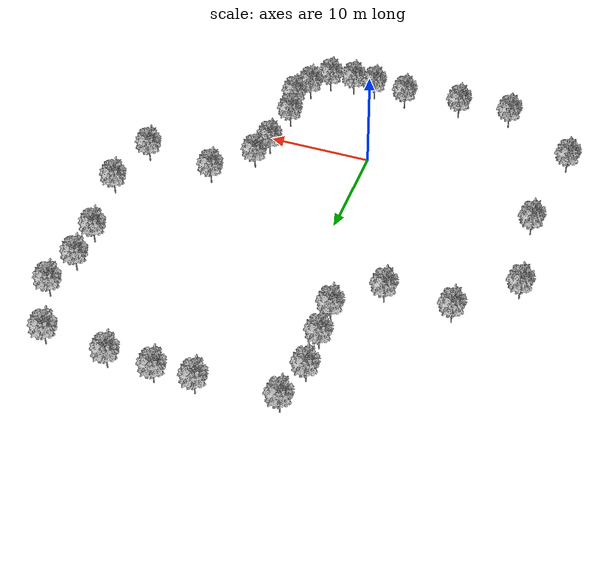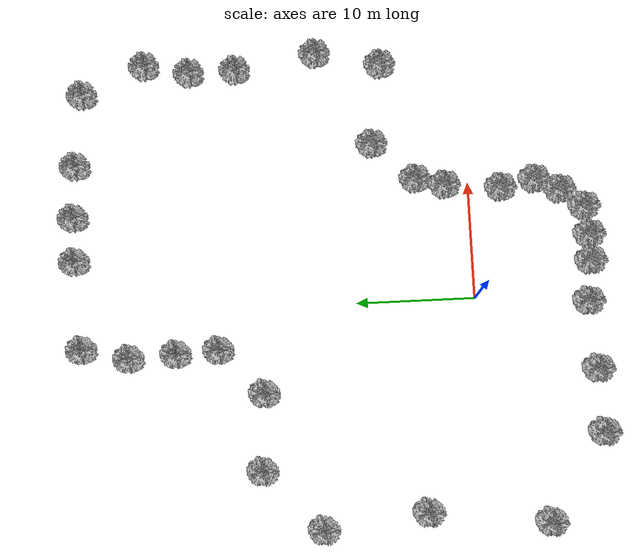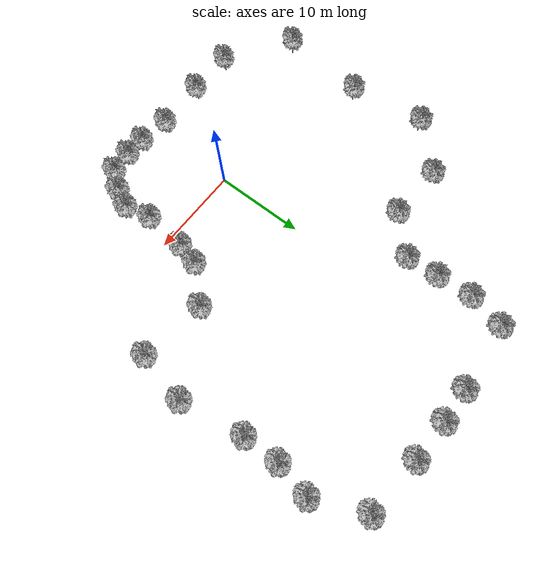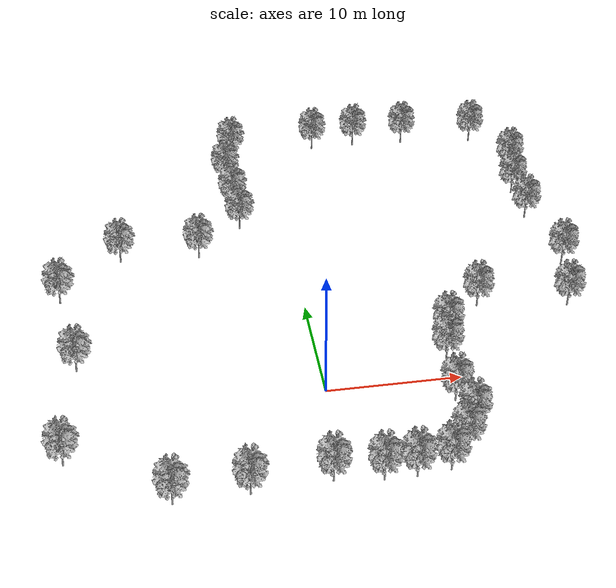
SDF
<sdf version="1.9">
 <world name="forest2">
  <physics type="ode">
   <max_step_size>0.004</max_step_size>
   <real_time_factor>1.0</real_time_factor>
   <real_time_update_rate>250</real_time_update_rate>
  </physics>
  <gravity>0 0 -9.8</gravity>
  <magnetic_field>6e-06 2.3e-05 -4.2e-05</magnetic_field>
  <atmosphere type="adiabatic"/>
  <scene>
   <grid>false</grid>
   <ambient>0.4 0.4 0.4 1</ambient>
   <background>0.7 0.7 0.7 1</background>
   <shadows>true</shadows>
  </scene>
  <include><uri>model://appletree</uri><name>Pine Tree_11</name><pose>10.0031 4.69601 0 0 -0 0</pose></include>
  <include><uri>model://appletree</uri><name>Pine Tree_12</name><pose>9.38057 2.24489 0 0 -0 0</pose></include>
  <include><uri>model://appletree</uri><name>Pine Tree_13</name><pose>8.95187 -2.43736 0 0 -0 0</pose></include>
  <include><uri>model://appletree</uri><name>Pine Tree_14</name><pose>9.54099 -5.29967 0 0 -0 0</pose></include>
  <include><uri>model://appletree</uri><name>Pine Tree_15</name><pose>8.56424 -7.36834 0 0 -0 0</pose></include>
  <include><uri>model://appletree</uri><name>Pine Tree_16</name><pose>7.04987 -9.30259 0 0 -0 0</pose></include>
  <include><uri>model://appletree</uri><name>Pine Tree_17</name><pose>4.64341 -9.56548 0 0 -0 0</pose></include>
  <include><uri>model://appletree</uri><name>Pine Tree_18</name><pose>2.39497 -9.53658 0 0 -0 0</pose></include>
  <include>
   <uri>model://appletree</uri>
   <name>Pine Tree_19</name>
   <pose>-0.978211 -9.12685 0 0 -0 0</pose>
  </include>
  <include>
   <uri>model://appletree</uri>
   <name>Apple Tree_20</name>
   <pose>-6.60386 -9.4906 0 0 -0 0</pose>
  </include>
  <include>
   <uri>model://appletree</uri>
   <name>Pine Tree_21</name>
   <pose>-11.7872 -9.60952 0 0 -0 0</pose>
  </include>
  <include>
   <uri>model://appletree</uri>
   <name>Pine Tree_19_1</name>
   <pose>-17.6272 5.0484 0 0 -0 0</pose>
  </include>
  <include>
   <uri>model://appletree</uri>
   <name>Pine Tree_19_2</name>
   <pose>-18.7952 -4.79736 0 0 -0 0</pose>
  </include>
  <include>
   <uri>model://appletree</uri>
   <name>Pine Tree_19_3</name>
   <pose>-18.6571 13.5589 0 0 -0 0</pose>
  </include>
  <include>
   <uri>model://appletree</uri>
   <name>Pine Tree_19_4</name>
   <pose>-13.7446 18.3234 0 0 -0 0</pose>
  </include>
  <include>
   <uri>model://appletree</uri>
   <name>Pine Tree_19_5</name>
   <pose>20.1207 7.17708 0 0 -0 0</pose>
  </include>
  <include>
   <uri>model://appletree</uri>
   <name>Pine Tree_19_6</name>
   <pose>-3.71164 21.6207 0 0 -0 0</pose>
  </include>
  <include>
   <uri>model://appletree</uri>
   <name>Pine Tree_19_7</name>
   <pose>-7.45162 17.9798 0 0 -0 0</pose>
  </include>
  <include>
   <uri>model://appletree</uri>
   <name>Pine Tree_19_8</name>
   <pose>-3.88653 25.1364 0 0 -0 0</pose>
  </include>
  <include>
   <uri>model://appletree</uri>
   <name>Pine Tree_19_9</name>
   <pose>-4.09489 29.0163 0 0 -0 0</pose>
  </include>
  <include>
   <uri>model://appletree</uri>
   <name>Pine Tree_19_10</name>
   <pose>21.3008 12.6766 0 0 -0 0</pose>
  </include>
  <include>
   <uri>model://appletree</uri>
   <name>Pine Tree_19_11</name>
   <pose>20.1494 19.5156 0 0 -0 0</pose>
  </include>
  <include>
   <uri>model://appletree</uri>
   <name>Pine Tree_19_12</name>
   <pose>13.1837 8.1871 0 0 -0 0</pose>
  </include>
  <include>
   <uri>model://appletree</uri>
   <name>Pine Tree_19_13</name>
   <pose>20.0557 23.4209 0 0 -0 0</pose>
  </include>
  <include>
   <uri>model://appletree</uri>
   <name>Pine Tree_19_14</name>
   <pose>20.8101 27.2073 0 0 -0 0</pose>
  </include>
  <include>
   <uri>model://appletree</uri>
   <name>Pine Tree_19_15</name>
   <pose>18.508 32.5244 0 0 -0 0</pose>
  </include>
  <include>
   <uri>model://appletree</uri>
   <name>Pine Tree_19_16</name>
   <pose>12.3362 33.1989 0 0 -0 0</pose>
  </include>
  <include>
   <uri>model://appletree</uri>
   <name>Pine Tree_19_17</name>
   <pose>7.92068 33.4253 0 0 -0 0</pose>
  </include>
  <include>
   <uri>model://appletree</uri>
   <name>Pine Tree_19_18</name>
   <pose>4.19562 33.3749 0 0 -0 0</pose>
  </include>
  <include>
   <uri>model://appletree</uri>
   <name>Apple Tree_19_19</name>
   <pose>-3.1997 32.8927 0 0 -0 0</pose>
  </include>
  <light name="sunUTC" type="directional">
   <pose>0 0 500 0 -0 0</pose>
   <intensity>1</intensity>
   <direction>0.001 0.625 -0.78</direction>
   <diffuse>0.904 0.904 0.904 1</diffuse>
   <specular>0.271 0.271 0.271 1</specular>
   <attenuation><range>2000</range><linear>0</linear><constant>1</constant><quadratic>0</quadratic></attenuation>
   <spot><inner_angle>0</inner_angle><outer_angle>0</outer_angle><falloff>0</falloff></spot>
  </light>
  <spherical_coordinates>
   <surface_model>EARTH_WGS84</surface_model>
   <world_frame_orientation>ENU</world_frame_orientation>
   <latitude_deg>47.397971057728974</latitude_deg>
   <longitude_deg>8.546163739800146</longitude_deg>
   <elevation>0</elevation>
  </spherical_coordinates>
 </world>
</sdf>

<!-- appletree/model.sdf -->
<sdf version="1.9">
  <model name="appletree">
    <static>true</static>
    <link name="link">

      <!-- Use the exact same mesh for collisions! -->
      <collision name="collision">
        <!-- Exact same pose as the visual -->
        <pose>0 0 0 0 0 0</pose>
        <geometry>
          <mesh>
            <uri>model://appletree/meshes/appletree.obj</uri>
            <scale>8 8 8</scale>
          </mesh>
        </geometry>
      </collision>

      <!-- The visual mesh -->
      <visual name="visual">
        <pose>0 0 0 0 0 0</pose>
        <geometry>
          <mesh>
            <uri>model://appletree/meshes/appletree.obj</uri>
            <scale>8 8 8</scale>
          </mesh>
        </geometry>
      </visual>

    </link>
  </model>
</sdf>
